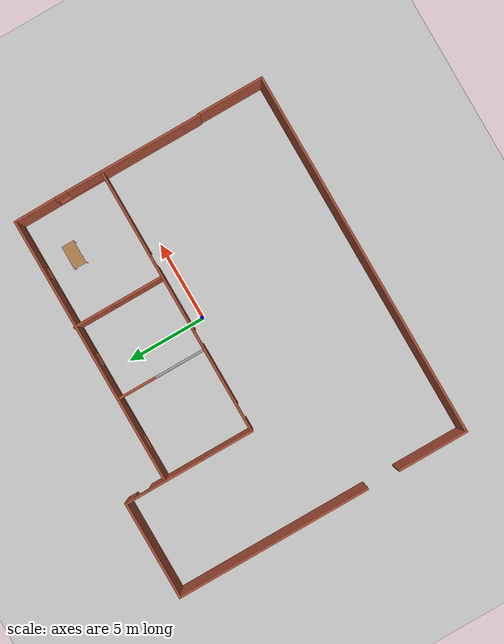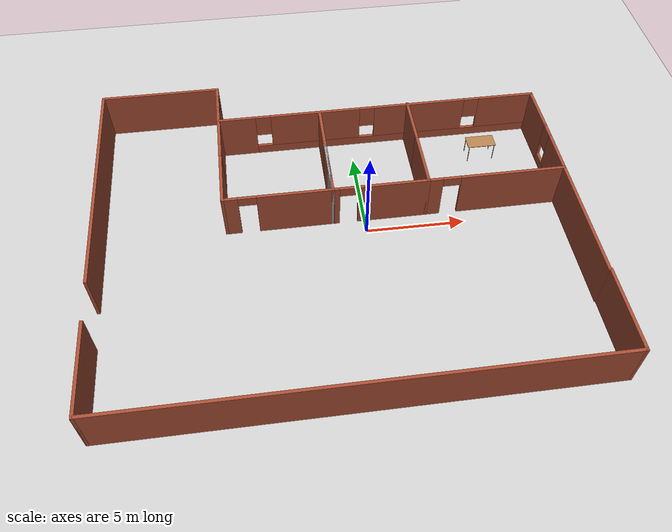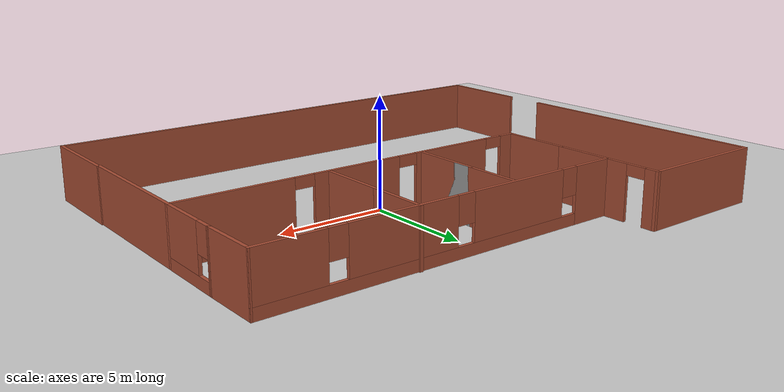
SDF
<sdf version="1.6">
 <world name="default">
  <model name="ground_plane">
   <static>1</static>
   <link name="link">
    <collision name="collision">
     <geometry><plane><normal>0 0 1</normal><size>100 100</size></plane></geometry>
     <surface>
      <contact><collide_bitmask>65535</collide_bitmask></contact>
      <friction><ode><mu>100</mu><mu2>50</mu2></ode></friction>
     </surface>
    </collision>
    <visual name="visual">
     <cast_shadows>0</cast_shadows>
     <geometry><plane><normal>0 0 1</normal><size>100 100</size></plane></geometry>
     <material>
      <script><uri>file://media/materials/scripts/gazebo.material</uri><name>Gazebo/Grey</name></script>
     </material>
    </visual>
   </link>
  </model>
  <model name="factory">
   <pose>-1.52295 -0.368547 0 0 -0 0</pose>
   <link name="Wall_1">
    <collision name="Wall_1_Collision">
     <geometry><box><size>6.5 0.15 2.5</size></box></geometry>
     <pose>0 0 1.25 0 -0 0</pose>
    </collision>
    <visual name="Wall_1_Visual">
     <pose>0 0 1.25 0 -0 0</pose>
     <geometry><box><size>6.5 0.15 2.5</size></box></geometry>
     <material>
      <script><uri>file://media/materials/scripts/gazebo.material</uri><name>Gazebo/Bricks</name></script>
      <ambient>1 1 1 1</ambient>
     </material>
     <meta><layer>0</layer></meta>
    </visual>
    <pose>11.5 -2.025 0 0 -0 1.5708</pose>
   </link>
   <link name="Wall_10">
    <collision name="Wall_10_Collision">
     <geometry><box><size>3.25 0.15 2.5</size></box></geometry>
     <pose>0 0 1.25 0 -0 0</pose>
    </collision>
    <visual name="Wall_10_Visual">
     <pose>0 0 1.25 0 -0 0</pose>
     <geometry><box><size>3.25 0.15 2.5</size></box></geometry>
     <material>
      <script><uri>file://media/materials/scripts/gazebo.material</uri><name>Gazebo/Bricks</name></script>
      <ambient>1 1 1 1</ambient>
     </material>
     <meta><layer>0</layer></meta>
    </visual>
    <pose>-5.45 2.7 0 0 0 -1.5708</pose>
   </link>
   <link name="Wall_11">
    <pose>-2.775 1.15 0 0 -0 0</pose>
    <visual name="Wall_11_Visual_0">
     <pose>-2.34253 0 1.25 0 -0 0</pose>
     <geometry><box><size>0.814938 0.15 2.5</size></box></geometry>
     <material>
      <script><uri>file://media/materials/scripts/gazebo.material</uri><name>Gazebo/Bricks</name></script>
      <ambient>1 1 1 1</ambient>
     </material>
     <meta><layer>0</layer></meta>
    </visual>
    <collision name="Wall_11_Collision_0">
     <geometry><box><size>0.814938 0.15 2.5</size></box></geometry>
     <pose>-2.34253 0 1.25 0 -0 0</pose>
    </collision>
    <visual name="Wall_11_Visual_1">
     <pose>0.857469 0 1.25 0 -0 0</pose>
     <geometry><box><size>3.78506 0.15 2.5</size></box></geometry>
     <material>
      <script><uri>file://media/materials/scripts/gazebo.material</uri><name>Gazebo/Bricks</name></script>
      <ambient>1 1 1 1</ambient>
     </material>
     <meta><layer>0</layer></meta>
    </visual>
    <collision name="Wall_11_Collision_1">
     <geometry><box><size>3.78506 0.15 2.5</size></box></geometry>
     <pose>0.857469 0 1.25 0 -0 0</pose>
    </collision>
    <visual name="Wall_11_Visual_2">
     <pose>-1.48506 0 2.25 0 -0 0</pose>
     <geometry><box><size>0.9 0.15 0.5</size></box></geometry>
     <material>
      <script><uri>file://media/materials/scripts/gazebo.material</uri><name>Gazebo/Bricks</name></script>
      <ambient>1 1 1 1</ambient>
     </material>
     <meta><layer>0</layer></meta>
    </visual>
    <collision name="Wall_11_Collision_2">
     <geometry><box><size>0.9 0.15 0.5</size></box></geometry>
     <pose>-1.48506 0 2.25 0 -0 0</pose>
    </collision>
   </link>
   <link name="Wall_12">
    <collision name="Wall_12_Collision">
     <geometry><box><size>3.25 0.15 2.5</size></box></geometry>
     <pose>0 0 1.25 0 -0 0</pose>
    </collision>
    <visual name="Wall_12_Visual">
     <pose>0 0 1.25 0 -0 0</pose>
     <geometry><box><size>3.25 0.15 2.5</size></box></geometry>
     <material>
      <script><uri>file://media/materials/scripts/gazebo.material</uri><name>Gazebo/Grey</name></script>
      <ambient>1 1 1 1</ambient>
     </material>
     <meta><layer>0</layer></meta>
    </visual>
    <pose>-0.100025 2.69977 0 0 -0 1.57081</pose>
   </link>
   <link name="Wall_13">
    <collision name="Wall_13_Collision">
     <geometry><box><size>3.25 0.15 2.5</size></box></geometry>
     <pose>0 0 1.25 0 -0 0</pose>
    </collision>
    <visual name="Wall_13_Visual">
     <pose>0 0 1.25 0 -0 0</pose>
     <geometry><box><size>3.25 0.15 2.5</size></box></geometry>
     <material>
      <script><uri>file://media/materials/scripts/gazebo.material</uri><name>Gazebo/Bricks</name></script>
      <ambient>1 1 1 1</ambient>
     </material>
     <meta><layer>0</layer></meta>
    </visual>
    <pose>-0.100025 2.69977 0 0 0 -1.57078</pose>
   </link>
   <link name="Wall_14">
    <pose>2.275 1.15 0 0 -0 0</pose>
    <visual name="Wall_14_Visual_0">
     <pose>-2.24379 0 1.25 0 -0 0</pose>
     <geometry><box><size>0.412411 0.15 2.5</size></box></geometry>
     <material>
      <script><uri>file://media/materials/scripts/gazebo.material</uri><name>Gazebo/Bricks</name></script>
      <ambient>1 1 1 1</ambient>
     </material>
     <meta><layer>0</layer></meta>
    </visual>
    <collision name="Wall_14_Collision_0">
     <geometry><box><size>0.412411 0.15 2.5</size></box></geometry>
     <pose>-2.24379 0 1.25 0 -0 0</pose>
    </collision>
    <visual name="Wall_14_Visual_1">
     <pose>0.656206 0 1.25 0 -0 0</pose>
     <geometry><box><size>3.58759 0.15 2.5</size></box></geometry>
     <material>
      <script><uri>file://media/materials/scripts/gazebo.material</uri><name>Gazebo/Bricks</name></script>
      <ambient>1 1 1 1</ambient>
     </material>
     <meta><layer>0</layer></meta>
    </visual>
    <collision name="Wall_14_Collision_1">
     <geometry><box><size>3.58759 0.15 2.5</size></box></geometry>
     <pose>0.656206 0 1.25 0 -0 0</pose>
    </collision>
    <visual name="Wall_14_Visual_2">
     <pose>-1.58759 0 2.25 0 -0 0</pose>
     <geometry><box><size>0.9 0.15 0.5</size></box></geometry>
     <material>
      <script><uri>file://media/materials/scripts/gazebo.material</uri><name>Gazebo/Bricks</name></script>
      <ambient>1 1 1 1</ambient>
     </material>
     <meta><layer>0</layer></meta>
    </visual>
    <collision name="Wall_14_Collision_2">
     <geometry><box><size>0.9 0.15 0.5</size></box></geometry>
     <pose>-1.58759 0 2.25 0 -0 0</pose>
    </collision>
   </link>
   <link name="Wall_18">
    <pose>11.5 2.7 0 0 0 -1.5708</pose>
    <visual name="Wall_18_Visual_0">
     <pose>-1.58269 0 1.25 0 -0 0</pose>
     <geometry><box><size>0.08462 0.15 2.5</size></box></geometry>
     <material>
      <script><uri>file://media/materials/scripts/gazebo.material</uri><name>Gazebo/Bricks</name></script>
      <ambient>1 1 1 1</ambient>
     </material>
     <meta><layer>0</layer></meta>
    </visual>
    <collision name="Wall_18_Collision_0">
     <geometry><box><size>0.08462 0.15 2.5</size></box></geometry>
     <pose>-1.58269 0 1.25 0 -0 0</pose>
    </collision>
    <visual name="Wall_18_Visual_1">
     <pose>0.04231 0 0.25 0 -0 0</pose>
     <geometry><box><size>3.16538 0.15 0.5</size></box></geometry>
     <material>
      <script><uri>file://media/materials/scripts/gazebo.material</uri><name>Gazebo/Bricks</name></script>
      <ambient>1 1 1 1</ambient>
     </material>
     <meta><layer>0</layer></meta>
    </visual>
    <collision name="Wall_18_Collision_1">
     <geometry><box><size>3.16538 0.15 0.5</size></box></geometry>
     <pose>0.04231 0 0.25 0 -0 0</pose>
    </collision>
    <visual name="Wall_18_Visual_2">
     <pose>0.44231 0 1.5 0 -0 0</pose>
     <geometry><box><size>2.36538 0.15 2</size></box></geometry>
     <material>
      <script><uri>file://media/materials/scripts/gazebo.material</uri><name>Gazebo/Bricks</name></script>
      <ambient>1 1 1 1</ambient>
     </material>
     <meta><layer>0</layer></meta>
    </visual>
    <collision name="Wall_18_Collision_2">
     <geometry><box><size>2.36538 0.15 2</size></box></geometry>
     <pose>0.44231 0 1.5 0 -0 0</pose>
    </collision>
    <visual name="Wall_18_Visual_3">
     <pose>-1.14038 0 1.9 0 -0 0</pose>
     <geometry><box><size>0.8 0.15 1.2</size></box></geometry>
     <material>
      <script><uri>file://media/materials/scripts/gazebo.material</uri><name>Gazebo/Bricks</name></script>
      <ambient>1 1 1 1</ambient>
     </material>
     <meta><layer>0</layer></meta>
    </visual>
    <collision name="Wall_18_Collision_3">
     <geometry><box><size>0.8 0.15 1.2</size></box></geometry>
     <pose>-1.14038 0 1.9 0 -0 0</pose>
    </collision>
   </link>
   <link name="Wall_19">
    <pose>8.075 1.15 0 0 -0 3.14159</pose>
    <visual name="Wall_19_Visual_0">
     <pose>-0.851138 0 1.25 0 -0 0</pose>
     <geometry><box><size>5.29772 0.15 2.5</size></box></geometry>
     <material>
      <script><uri>file://media/materials/scripts/gazebo.material</uri><name>Gazebo/Bricks</name></script>
      <ambient>1 1 1 1</ambient>
     </material>
     <meta><layer>0</layer></meta>
    </visual>
    <collision name="Wall_19_Collision_0">
     <geometry><box><size>5.29772 0.15 2.5</size></box></geometry>
     <pose>-0.851138 0 1.25 0 -0 0</pose>
    </collision>
    <visual name="Wall_19_Visual_1">
     <pose>3.09886 0 1.25 0 -0 0</pose>
     <geometry><box><size>0.802276 0.15 2.5</size></box></geometry>
     <material>
      <script><uri>file://media/materials/scripts/gazebo.material</uri><name>Gazebo/Bricks</name></script>
      <ambient>1 1 1 1</ambient>
     </material>
     <meta><layer>0</layer></meta>
    </visual>
    <collision name="Wall_19_Collision_1">
     <geometry><box><size>0.802276 0.15 2.5</size></box></geometry>
     <pose>3.09886 0 1.25 0 -0 0</pose>
    </collision>
    <visual name="Wall_19_Visual_2">
     <pose>2.24772 0 2.25 0 -0 0</pose>
     <geometry><box><size>0.9 0.15 0.5</size></box></geometry>
     <material>
      <script><uri>file://media/materials/scripts/gazebo.material</uri><name>Gazebo/Bricks</name></script>
      <ambient>1 1 1 1</ambient>
     </material>
     <meta><layer>0</layer></meta>
    </visual>
    <collision name="Wall_19_Collision_2">
     <geometry><box><size>0.9 0.15 0.5</size></box></geometry>
     <pose>2.24772 0 2.25 0 -0 0</pose>
    </collision>
   </link>
   <link name="Wall_21">
    <pose>3.04644 6.78716 0 0 -0 0</pose>
    <visual name="Wall_21_Visual_0">
     <pose>-7.52728 0 1.25 0 -0 0</pose>
     <geometry><box><size>1.94543 0.15 2.5</size></box></geometry>
     <material>
      <script><uri>file://media/materials/scripts/gazebo.material</uri><name>Gazebo/Bricks</name></script>
      <ambient>1 1 1 1</ambient>
     </material>
     <meta><layer>0</layer></meta>
    </visual>
    <collision name="Wall_21_Collision_0">
     <geometry><box><size>1.94543 0.15 2.5</size></box></geometry>
     <pose>-7.52728 0 1.25 0 -0 0</pose>
    </collision>
    <visual name="Wall_21_Visual_1">
     <pose>0.972717 0 0.25 0 -0 0</pose>
     <geometry><box><size>15.0546 0.15 0.5</size></box></geometry>
     <material>
      <script><uri>file://media/materials/scripts/gazebo.material</uri><name>Gazebo/Bricks</name></script>
      <ambient>1 1 1 1</ambient>
     </material>
     <meta><layer>0</layer></meta>
    </visual>
    <collision name="Wall_21_Collision_1">
     <geometry><box><size>15.0546 0.15 0.5</size></box></geometry>
     <pose>0.972717 0 0.25 0 -0 0</pose>
    </collision>
    <visual name="Wall_21_Visual_2">
     <pose>-3.37545 0 1.5 0 -0 0</pose>
     <geometry><box><size>4.75824 0.15 2</size></box></geometry>
     <material>
      <script><uri>file://media/materials/scripts/gazebo.material</uri><name>Gazebo/Bricks</name></script>
      <ambient>1 1 1 1</ambient>
     </material>
     <meta><layer>0</layer></meta>
    </visual>
    <collision name="Wall_21_Collision_2">
     <geometry><box><size>4.75824 0.15 2</size></box></geometry>
     <pose>-3.37545 0 1.5 0 -0 0</pose>
    </collision>
    <visual name="Wall_21_Visual_3">
     <pose>2.25316 0 1.5 0 -0 0</pose>
     <geometry><box><size>4.89896 0.15 2</size></box></geometry>
     <material>
      <script><uri>file://media/materials/scripts/gazebo.material</uri><name>Gazebo/Bricks</name></script>
      <ambient>1 1 1 1</ambient>
     </material>
     <meta><layer>0</layer></meta>
    </visual>
    <collision name="Wall_21_Collision_3">
     <geometry><box><size>4.89896 0.15 2</size></box></geometry>
     <pose>2.25316 0 1.5 0 -0 0</pose>
    </collision>
    <visual name="Wall_21_Visual_4">
     <pose>7.00132 0 1.5 0 -0 0</pose>
     <geometry><box><size>2.99736 0.15 2</size></box></geometry>
     <material>
      <script><uri>file://media/materials/scripts/gazebo.material</uri><name>Gazebo/Bricks</name></script>
      <ambient>1 1 1 1</ambient>
     </material>
     <meta><layer>0</layer></meta>
    </visual>
    <collision name="Wall_21_Collision_4">
     <geometry><box><size>2.99736 0.15 2</size></box></geometry>
     <pose>7.00132 0 1.5 0 -0 0</pose>
    </collision>
    <visual name="Wall_21_Visual_5">
     <pose>-6.15457 0 1.9 0 -0 0</pose>
     <geometry><box><size>0.8 0.15 1.2</size></box></geometry>
     <material>
      <script><uri>file://media/materials/scripts/gazebo.material</uri><name>Gazebo/Bricks</name></script>
      <ambient>1 1 1 1</ambient>
     </material>
     <meta><layer>0</layer></meta>
    </visual>
    <collision name="Wall_21_Collision_5">
     <geometry><box><size>0.8 0.15 1.2</size></box></geometry>
     <pose>-6.15457 0 1.9 0 -0 0</pose>
    </collision>
    <visual name="Wall_21_Visual_6">
     <pose>-0.596322 0 1.9 0 -0 0</pose>
     <geometry><box><size>0.8 0.15 1.2</size></box></geometry>
     <material>
      <script><uri>file://media/materials/scripts/gazebo.material</uri><name>Gazebo/Bricks</name></script>
      <ambient>1 1 1 1</ambient>
     </material>
     <meta><layer>0</layer></meta>
    </visual>
    <collision name="Wall_21_Collision_6">
     <geometry><box><size>0.8 0.15 1.2</size></box></geometry>
     <pose>-0.596322 0 1.9 0 -0 0</pose>
    </collision>
    <visual name="Wall_21_Visual_7">
     <pose>5.10264 0 1.9 0 -0 0</pose>
     <geometry><box><size>0.8 0.15 1.2</size></box></geometry>
     <material>
      <script><uri>file://media/materials/scripts/gazebo.material</uri><name>Gazebo/Bricks</name></script>
      <ambient>1 1 1 1</ambient>
     </material>
     <meta><layer>0</layer></meta>
    </visual>
    <collision name="Wall_21_Collision_7">
     <geometry><box><size>0.8 0.15 1.2</size></box></geometry>
     <pose>5.10264 0 1.9 0 -0 0</pose>
    </collision>
   </link>
   <link name="Wall_22">
    <collision name="Wall_22_Collision">
     <geometry><box><size>2.68732 0.15 2.5</size></box></geometry>
     <pose>0 0 1.25 0 -0 0</pose>
    </collision>
    <visual name="Wall_22_Visual">
     <pose>0 0 1.25 0 -0 0</pose>
     <geometry><box><size>2.68732 0.15 2.5</size></box></geometry>
     <material>
      <script><uri>file://media/materials/scripts/gazebo.material</uri><name>Gazebo/Bricks</name></script>
      <ambient>1 1 1 1</ambient>
     </material>
     <meta><layer>0</layer></meta>
    </visual>
    <pose>11.4857 5.51858 0 0 0 -1.55954</pose>
   </link>
   <link name="Wall_28">
    <collision name="Wall_28_Collision">
     <geometry><box><size>2.576 0.15 2.5</size></box></geometry>
     <pose>0 0 1.25 0 -0 0</pose>
    </collision>
    <visual name="Wall_28_Visual">
     <pose>0 0 1.25 0 -0 0</pose>
     <geometry><box><size>2.576 0.15 2.5</size></box></geometry>
     <material>
      <script><uri>file://media/materials/scripts/gazebo.material</uri><name>Gazebo/Bricks</name></script>
      <ambient>1 1 1 1</ambient>
     </material>
     <meta><layer>0</layer></meta>
    </visual>
    <pose>-0.10005 5.46255 0 0 -0 1.5708</pose>
   </link>
   <link name="Wall_3">
    <collision name="Wall_3_Collision">
     <geometry><box><size>3.25 0.15 2.5</size></box></geometry>
     <pose>0 0 1.25 0 -0 0</pose>
    </collision>
    <visual name="Wall_3_Visual">
     <pose>0 0 1.25 0 -0 0</pose>
     <geometry><box><size>3.25 0.15 2.5</size></box></geometry>
     <material>
      <script><uri>file://media/materials/scripts/gazebo.material</uri><name>Gazebo/Bricks</name></script>
      <ambient>1 1 1 1</ambient>
     </material>
     <meta><layer>0</layer></meta>
    </visual>
    <pose>4.65 2.7 0 0 -0 1.5708</pose>
   </link>
   <link name="Wall_30">
    <collision name="Wall_30_Collision">
     <geometry><box><size>2.75 0.15 2.5</size></box></geometry>
     <pose>0 0 1.25 0 -0 0</pose>
    </collision>
    <visual name="Wall_30_Visual">
     <pose>0 0 1.25 0 -0 0</pose>
     <geometry><box><size>2.75 0.15 2.5</size></box></geometry>
     <material>
      <script><uri>file://media/materials/scripts/gazebo.material</uri><name>Gazebo/Bricks</name></script>
      <ambient>1 1 1 1</ambient>
     </material>
     <meta><layer>0</layer></meta>
    </visual>
    <pose>4.65 5.55 0 0 -0 1.5708</pose>
   </link>
   <link name="Wall_32">
    <collision name="Wall_32_Collision">
     <geometry><box><size>4.5 0.15 2.5</size></box></geometry>
     <pose>0 0 1.25 0 -0 0</pose>
    </collision>
    <visual name="Wall_32_Visual">
     <pose>0 0 1.25 0 -0 0</pose>
     <geometry><box><size>4.5 0.15 2.5</size></box></geometry>
     <material>
      <script><uri>file://media/materials/scripts/gazebo.material</uri><name>Gazebo/Bricks</name></script>
      <ambient>1 1 1 1</ambient>
     </material>
     <meta><layer>0</layer></meta>
    </visual>
    <pose>-11.55 -7.175 0 0 0 -1.5708</pose>
   </link>
   <link name="Wall_33">
    <collision name="Wall_33_Collision">
     <geometry><box><size>23.25 0.15 2.5</size></box></geometry>
     <pose>0 0 1.25 0 -0 0</pose>
    </collision>
    <visual name="Wall_33_Visual">
     <pose>0 0 1.25 0 -0 0</pose>
     <geometry><box><size>23.25 0.15 2.5</size></box></geometry>
     <material>
      <script><uri>file://media/materials/scripts/gazebo.material</uri><name>Gazebo/Bricks</name></script>
      <ambient>1 1 1 1</ambient>
     </material>
     <meta><layer>0</layer></meta>
    </visual>
    <pose>1e-06 -9.35 0 0 -0 0</pose>
   </link>
   <link name="Wall_34">
    <collision name="Wall_34_Collision">
     <geometry><box><size>4.25 0.15 2.5</size></box></geometry>
     <pose>0 0 1.25 0 -0 0</pose>
    </collision>
    <visual name="Wall_34_Visual">
     <pose>0 0 1.25 0 -0 0</pose>
     <geometry><box><size>4.25 0.15 2.5</size></box></geometry>
     <material>
      <script><uri>file://media/materials/scripts/gazebo.material</uri><name>Gazebo/Bricks</name></script>
      <ambient>1 1 1 1</ambient>
     </material>
     <meta><layer>0</layer></meta>
    </visual>
    <pose>11.55 -7.3 0 0 -0 1.5708</pose>
   </link>
   <link name="Wall_5">
    <pose>-5.45 6.8 0 0 -0 1.5708</pose>
    <visual name="Wall_5_Visual_0">
     <pose>-0.779824 0 1.25 0 -0 0</pose>
     <geometry><box><size>3.69035 0.15 2.5</size></box></geometry>
     <material>
      <script><uri>file://media/materials/scripts/gazebo.material</uri><name>Gazebo/Bricks</name></script>
      <ambient>1 1 1 1</ambient>
     </material>
     <meta><layer>0</layer></meta>
    </visual>
    <collision name="Wall_5_Collision_0">
     <geometry><box><size>3.69035 0.15 2.5</size></box></geometry>
     <pose>-0.779824 0 1.25 0 -0 0</pose>
    </collision>
    <visual name="Wall_5_Visual_1">
     <pose>2.29518 0 1.25 0 -0 0</pose>
     <geometry><box><size>0.659647 0.15 2.5</size></box></geometry>
     <material>
      <script><uri>file://media/materials/scripts/gazebo.material</uri><name>Gazebo/Bricks</name></script>
      <ambient>1 1 1 1</ambient>
     </material>
     <meta><layer>0</layer></meta>
    </visual>
    <collision name="Wall_5_Collision_1">
     <geometry><box><size>0.659647 0.15 2.5</size></box></geometry>
     <pose>2.29518 0 1.25 0 -0 0</pose>
    </collision>
    <visual name="Wall_5_Visual_2">
     <pose>1.51535 0 2.25 0 -0 0</pose>
     <geometry><box><size>0.9 0.15 0.5</size></box></geometry>
     <material>
      <script><uri>file://media/materials/scripts/gazebo.material</uri><name>Gazebo/Bricks</name></script>
      <ambient>1 1 1 1</ambient>
     </material>
     <meta><layer>0</layer></meta>
    </visual>
    <collision name="Wall_5_Collision_2">
     <geometry><box><size>0.9 0.15 0.5</size></box></geometry>
     <pose>1.51535 0 2.25 0 -0 0</pose>
    </collision>
   </link>
   <link name="Wall_6">
    <collision name="Wall_6_Collision">
     <geometry><box><size>6.25 0.15 2.5</size></box></geometry>
     <pose>0 0 1.25 0 -0 0</pose>
    </collision>
    <visual name="Wall_6_Visual">
     <pose>0 0 1.25 0 -0 0</pose>
     <geometry><box><size>6.25 0.15 2.5</size></box></geometry>
     <material>
      <script><uri>file://media/materials/scripts/gazebo.material</uri><name>Gazebo/Bricks</name></script>
      <ambient>1 1 1 1</ambient>
     </material>
     <meta><layer>0</layer></meta>
    </visual>
    <pose>-8.5 9.35 0 0 -0 3.14159</pose>
   </link>
   <link name="Wall_7">
    <pose>-11.55 2.175 0 0 0 -1.5708</pose>
    <visual name="Wall_7_Visual_0">
     <pose>-1.06219 0 1.25 0 -0 0</pose>
     <geometry><box><size>12.3756 0.15 2.5</size></box></geometry>
     <material>
      <script><uri>file://media/materials/scripts/gazebo.material</uri><name>Gazebo/Bricks</name></script>
      <ambient>1 1 1 1</ambient>
     </material>
     <meta><layer>0</layer></meta>
    </visual>
    <collision name="Wall_7_Collision_0">
     <geometry><box><size>12.3756 0.15 2.5</size></box></geometry>
     <pose>-1.06219 0 1.25 0 -0 0</pose>
    </collision>
   </link>
   <static>1</static>
  </model>
  <model name="table_1">
   <static>1</static>
   <link name="link">
    <collision name="surface">
     <pose>0 0 1 0 -0 0</pose>
     <geometry><box><size>1.5 0.8 0.03</size></box></geometry>
     <surface><friction><ode><mu>0.6</mu><mu2>0.6</mu2></ode></friction></surface>
    </collision>
    <visual name="visual1">
     <pose>0 0 1 0 -0 0</pose>
     <geometry><box><size>1.5 0.8 0.03</size></box></geometry>
     <material>
      <script><uri>file://media/materials/scripts/gazebo.material</uri><name>Gazebo/Wood</name></script>
     </material>
    </visual>
    <collision name="front_left_leg">
     <pose>0.68 0.38 0.5 0 -0 0</pose>
     <geometry><cylinder><radius>0.02</radius><length>1</length></cylinder></geometry>
    </collision>
    <visual name="front_left_leg">
     <pose>0.68 0.38 0.5 0 -0 0</pose>
     <geometry><cylinder><radius>0.02</radius><length>1</length></cylinder></geometry>
     <material>
      <script><uri>file://media/materials/scripts/gazebo.material</uri><name>Gazebo/Grey</name></script>
     </material>
    </visual>
    <collision name="front_right_leg">
     <pose>0.68 -0.38 0.5 0 -0 0</pose>
     <geometry><cylinder><radius>0.02</radius><length>1</length></cylinder></geometry>
    </collision>
    <visual name="front_right_leg">
     <pose>0.68 -0.38 0.5 0 -0 0</pose>
     <geometry><cylinder><radius>0.02</radius><length>1</length></cylinder></geometry>
     <material>
      <script><uri>file://media/materials/scripts/gazebo.material</uri><name>Gazebo/Grey</name></script>
     </material>
    </visual>
    <collision name="back_right_leg">
     <pose>-0.68 -0.38 0.5 0 -0 0</pose>
     <geometry><cylinder><radius>0.02</radius><length>1</length></cylinder></geometry>
    </collision>
    <visual name="back_right_leg">
     <pose>-0.68 -0.38 0.5 0 -0 0</pose>
     <geometry><cylinder><radius>0.02</radius><length>1</length></cylinder></geometry>
     <material>
      <script><uri>file://media/materials/scripts/gazebo.material</uri><name>Gazebo/Grey</name></script>
     </material>
    </visual>
    <collision name="back_left_leg">
     <pose>-0.68 0.38 0.5 0 -0 0</pose>
     <geometry><cylinder><radius>0.02</radius><length>1</length></cylinder></geometry>
    </collision>
    <visual name="back_left_leg">
     <pose>-0.68 0.38 0.5 0 -0 0</pose>
     <geometry><cylinder><radius>0.02</radius><length>1</length></cylinder></geometry>
     <material>
      <script><uri>file://media/materials/scripts/gazebo.material</uri><name>Gazebo/Grey</name></script>
     </material>
    </visual>
   </link>
   <pose>6.89937 4.6144 0 0 -0 0</pose>
  </model>
 </world>
</sdf>
